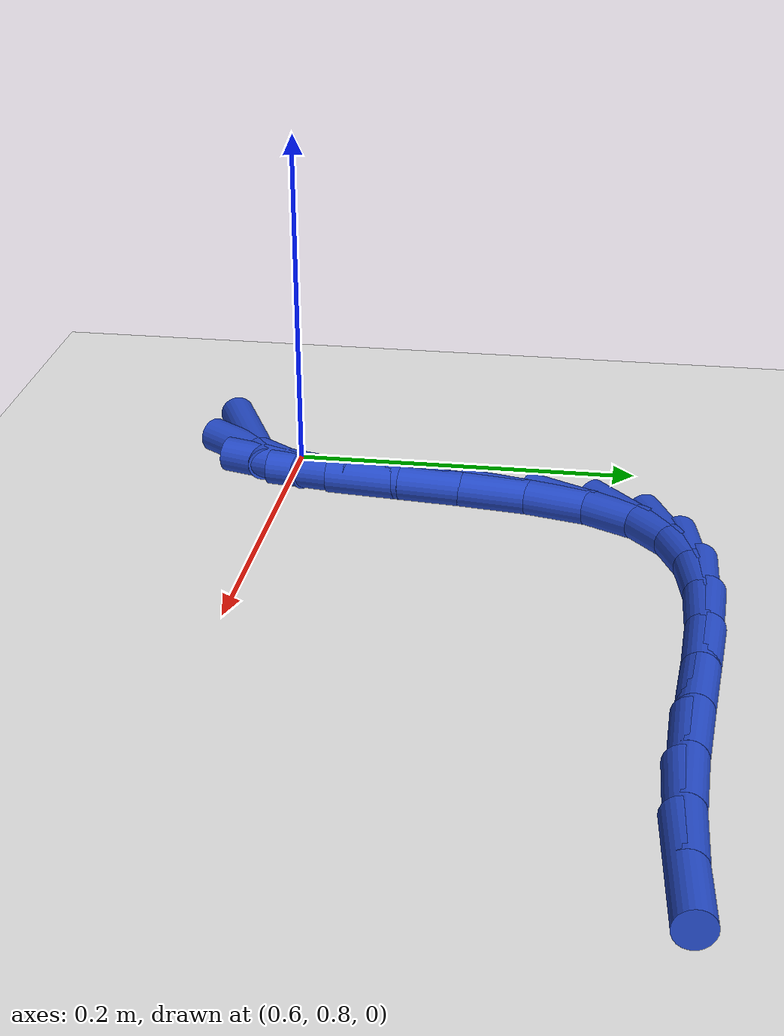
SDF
<sdf version="1.6">
 <world name="default">
  <model name="ground_plane">
   <static>1</static>
   <link name="link">
    <collision name="collision">
     <geometry><plane><normal>0 0 1</normal><size>100 100</size></plane></geometry>
     <surface><friction><ode><mu>100</mu><mu2>50</mu2></ode></friction></surface>
    </collision>
    <visual name="visual">
     <cast_shadows>0</cast_shadows>
     <geometry><plane><normal>0 0 1</normal><size>100 100</size></plane></geometry>
     <material>
      <script><uri>file://media/materials/scripts/gazebo.material</uri><name>Gazebo/WhiteGlow</name></script>
     </material>
    </visual>
   </link>
  </model>
  <model name="line">
   <link name="link_35">
    <pose>0.5990806091081815 0.7688030998412557 0.01 0 1.57 0.43579109033403973</pose>
    <collision name="collision">
     <geometry><cylinder><radius>0.01</radius><length>0.08</length></cylinder></geometry>
    </collision>
    <visual name="visual">
     <material>
      <script><name>Gazebo/Blue</name><uri>file://media/materials/scripts/gazebo.material</uri></script>
     </material>
     <geometry><cylinder><radius>0.01</radius><length>0.08</length></cylinder></geometry>
    </visual>
   </link>
   <link name="link_36">
    <pose>0.6203224123667376 0.7786943225170999 0.01 0 1.57 0.9597044368736017</pose>
    <collision name="collision">
     <geometry><cylinder><radius>0.01</radius><length>0.08</length></cylinder></geometry>
    </collision>
    <visual name="visual">
     <material>
      <script><name>Gazebo/Blue</name><uri>file://media/materials/scripts/gazebo.material</uri></script>
     </material>
     <geometry><cylinder><radius>0.01</radius><length>0.08</length></cylinder></geometry>
    </visual>
   </link>
   <link name="link_37">
    <pose>0.6347462617645317 0.7992837804465411 0.01 0 1.57 1.2913432090761514</pose>
    <collision name="collision">
     <geometry><cylinder><radius>0.01</radius><length>0.08</length></cylinder></geometry>
    </collision>
    <visual name="visual">
     <material>
      <script><name>Gazebo/Blue</name><uri>file://media/materials/scripts/gazebo.material</uri></script>
     </material>
     <geometry><cylinder><radius>0.01</radius><length>0.08</length></cylinder></geometry>
    </visual>
   </link>
   <link name="link_38">
    <pose>0.643355238662773 0.8292841547567883 0.01 0 1.57 1.4305915507599878</pose>
    <collision name="collision">
     <geometry><cylinder><radius>0.01</radius><length>0.08</length></cylinder></geometry>
    </collision>
    <visual name="visual">
     <material>
      <script><name>Gazebo/Blue</name><uri>file://media/materials/scripts/gazebo.material</uri></script>
     </material>
     <geometry><cylinder><radius>0.01</radius><length>0.08</length></cylinder></geometry>
    </visual>
   </link>
   <link name="link_39">
    <pose>0.6484591666807342 0.8654486918655342 0.01 0 1.57 1.4704170810159158</pose>
    <collision name="collision">
     <geometry><cylinder><radius>0.01</radius><length>0.08</length></cylinder></geometry>
    </collision>
    <visual name="visual">
     <material>
      <script><name>Gazebo/Blue</name><uri>file://media/materials/scripts/gazebo.material</uri></script>
     </material>
     <geometry><cylinder><radius>0.01</radius><length>0.08</length></cylinder></geometry>
    </visual>
   </link>
   <link name="link_40">
    <pose>0.6523917985203208 0.9044947569944771 0.01 0 1.57 1.4397088436168461</pose>
    <collision name="collision">
     <geometry><cylinder><radius>0.01</radius><length>0.08</length></cylinder></geometry>
    </collision>
    <visual name="visual">
     <material>
      <script><name>Gazebo/Blue</name><uri>file://media/materials/scripts/gazebo.material</uri></script>
     </material>
     <geometry><cylinder><radius>0.01</radius><length>0.08</length></cylinder></geometry>
    </visual>
   </link>
   <link name="link_41">
    <pose>0.6574868868834388 0.9431397153653144 0.01 0 1.57 1.329833014490731</pose>
    <collision name="collision">
     <geometry><cylinder><radius>0.01</radius><length>0.08</length></cylinder></geometry>
    </collision>
    <visual name="visual">
     <material>
      <script><name>Gazebo/Blue</name><uri>file://media/materials/scripts/gazebo.material</uri></script>
     </material>
     <geometry><cylinder><radius>0.01</radius><length>0.08</length></cylinder></geometry>
    </visual>
   </link>
   <link name="link_42">
    <pose>0.6660781844719931 0.9781009321997431 0.01 0 1.57 1.0961474673463791</pose>
    <collision name="collision">
     <geometry><cylinder><radius>0.01</radius><length>0.08</length></cylinder></geometry>
    </collision>
    <visual name="visual">
     <material>
      <script><name>Gazebo/Blue</name><uri>file://media/materials/scripts/gazebo.material</uri></script>
     </material>
     <geometry><cylinder><radius>0.01</radius><length>0.08</length></cylinder></geometry>
    </visual>
   </link>
   <link name="link_43">
    <pose>0.6804781815162503 1.0061258585781676 0.01 0 1.57 0.7447042564367754</pose>
    <collision name="collision">
     <geometry><cylinder><radius>0.01</radius><length>0.08</length></cylinder></geometry>
    </collision>
    <visual name="visual">
     <material>
      <script><name>Gazebo/Blue</name><uri>file://media/materials/scripts/gazebo.material</uri></script>
     </material>
     <geometry><cylinder><radius>0.01</radius><length>0.08</length></cylinder></geometry>
    </visual>
   </link>
   <link name="link_44">
    <pose>0.701748521666757 1.0257318618023605 0.01 0 1.57 0.42750193804403613</pose>
    <collision name="collision">
     <geometry><cylinder><radius>0.01</radius><length>0.08</length></cylinder></geometry>
    </collision>
    <visual name="visual">
     <material>
      <script><name>Gazebo/Blue</name><uri>file://media/materials/scripts/gazebo.material</uri></script>
     </material>
     <geometry><cylinder><radius>0.01</radius><length>0.08</length></cylinder></geometry>
    </visual>
   </link>
   <link name="link_45">
    <pose>0.7290262209022123 1.0381596085712608 0.01 0 1.57 0.2054440767529333</pose>
    <collision name="collision">
     <geometry><cylinder><radius>0.01</radius><length>0.08</length></cylinder></geometry>
    </collision>
    <visual name="visual">
     <material>
      <script><name>Gazebo/Blue</name><uri>file://media/materials/scripts/gazebo.material</uri></script>
     </material>
     <geometry><cylinder><radius>0.01</radius><length>0.08</length></cylinder></geometry>
    </visual>
   </link>
   <link name="link_46">
    <pose>0.7612843826505585 1.0448816976905675 0.01 0 1.57 0.06862753163972198</pose>
    <collision name="collision">
     <geometry><cylinder><radius>0.01</radius><length>0.08</length></cylinder></geometry>
    </collision>
    <visual name="visual">
     <material>
      <script><name>Gazebo/Blue</name><uri>file://media/materials/scripts/gazebo.material</uri></script>
     </material>
     <geometry><cylinder><radius>0.01</radius><length>0.08</length></cylinder></geometry>
    </visual>
   </link>
   <link name="link_47">
    <pose>0.797496110339739 1.0473707279659812 0.01 0 1.57 -0.006935016039174146</pose>
    <collision name="collision">
     <geometry><cylinder><radius>0.01</radius><length>0.08</length></cylinder></geometry>
    </collision>
    <visual name="visual">
     <material>
      <script><name>Gazebo/Blue</name><uri>file://media/materials/scripts/gazebo.material</uri></script>
     </material>
     <geometry><cylinder><radius>0.01</radius><length>0.08</length></cylinder></geometry>
    </visual>
   </link>
   <link name="link_48">
    <pose>0.8366345073976962 1.0470992982032012 0.01 0 1.57 -0.03797784513476099</pose>
    <collision name="collision">
     <geometry><cylinder><radius>0.01</radius><length>0.08</length></cylinder></geometry>
    </collision>
    <visual name="visual">
     <material>
      <script><name>Gazebo/Blue</name><uri>file://media/materials/scripts/gazebo.material</uri></script>
     </material>
     <geometry><cylinder><radius>0.01</radius><length>0.08</length></cylinder></geometry>
    </visual>
   </link>
   <link name="link_49">
    <pose>0.8776726772523731 1.0455400072079277 0.01 0 1.57 -0.03278517306723285</pose>
    <collision name="collision">
     <geometry><cylinder><radius>0.01</radius><length>0.08</length></cylinder></geometry>
    </collision>
    <visual name="visual">
     <material>
      <script><name>Gazebo/Blue</name><uri>file://media/materials/scripts/gazebo.material</uri></script>
     </material>
     <geometry><cylinder><radius>0.01</radius><length>0.08</length></cylinder></geometry>
    </visual>
   </link>
   <link name="link_50">
    <pose>0.9195837233317121 1.04416545378586 0.01 0 1.57 0.006586137863566531</pose>
    <collision name="collision">
     <geometry><cylinder><radius>0.01</radius><length>0.08</length></cylinder></geometry>
    </collision>
    <visual name="visual">
     <material>
      <script><name>Gazebo/Blue</name><uri>file://media/materials/scripts/gazebo.material</uri></script>
     </material>
     <geometry><cylinder><radius>0.01</radius><length>0.08</length></cylinder></geometry>
    </visual>
   </link>
   <link name="link_51">
    <pose>0.9613443679664532 1.0444404991256073 0.01 0 1.57 0.06553168916651769</pose>
    <collision name="collision">
     <geometry><cylinder><radius>0.01</radius><length>0.08</length></cylinder></geometry>
    </collision>
    <visual name="visual">
     <material>
      <script><name>Gazebo/Blue</name><uri>file://media/materials/scripts/gazebo.material</uri></script>
     </material>
     <geometry><cylinder><radius>0.01</radius><length>0.08</length></cylinder></geometry>
    </visual>
   </link>
   <link name="link_52">
    <pose>1.0022607552886171 1.047125663928259 0.01 0 1.57 0.11453354054173945</pose>
    <collision name="collision">
     <geometry><cylinder><radius>0.01</radius><length>0.08</length></cylinder></geometry>
    </collision>
    <visual name="visual">
     <material>
      <script><name>Gazebo/Blue</name><uri>file://media/materials/scripts/gazebo.material</uri></script>
     </material>
     <geometry><cylinder><radius>0.01</radius><length>0.08</length></cylinder></geometry>
    </visual>
   </link>
  </model>
 </world>
</sdf>
